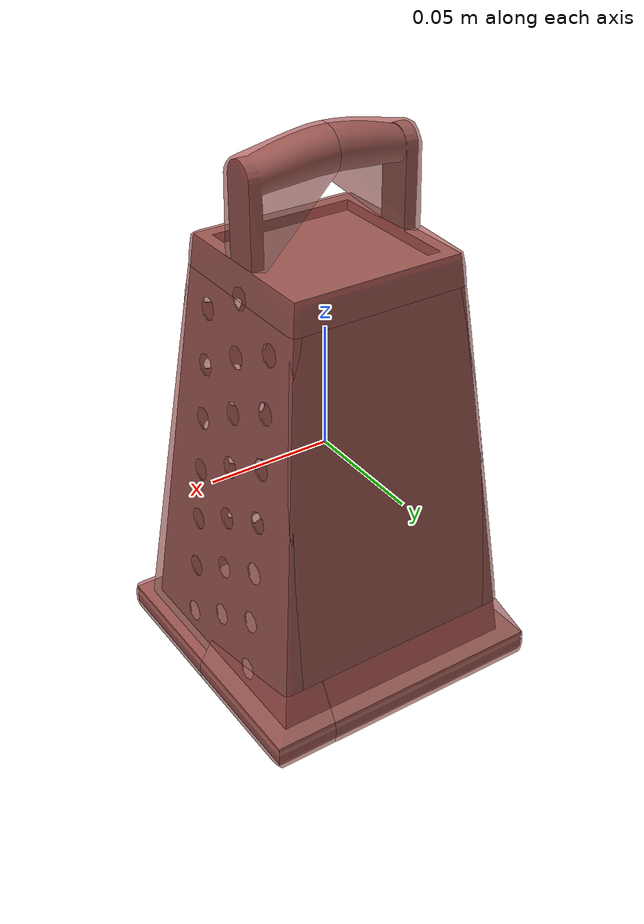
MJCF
<mujoco model="model">
  <option timestep="0.002" gravity="0.0 0.0 -9.81"/>
  <compiler angle="radian"/>
  <asset>
    <mesh file="visual/CheeseGrater005.obj" name="CheeseGrater005_vis"/>
    <mesh file="visual/Clear.obj" name="CheeseGrater005_Clear_vis"/>
    <texture file="visual/T_BC001.png" name="CheeseGrater005_material" type="2d"/>
    <material name="CheeseGrater005_material" rgba="1 1 1 1.0" texture="CheeseGrater005_material" shininess="0.5" specular="3"/>
    <texture file="visual/T_BC001.png" name="CheeseGrater005_Clear_material" type="2d"/>
    <material name="CheeseGrater005_Clear_material" rgba="1 1 1 0.699999988079071" texture="CheeseGrater005_Clear_material" shininess="0.5" specular="0.3103448502657381"/>
    <mesh file="collision/collision_mesh_collision_0.obj" name="CheeseGrater005_collision_mesh_0"/>
    <mesh file="collision/collision_mesh_collision_1.obj" name="CheeseGrater005_collision_mesh_1"/>
    <mesh file="collision/collision_mesh_collision_2.obj" name="CheeseGrater005_collision_mesh_2"/>
    <mesh file="collision/collision_mesh_collision_3.obj" name="CheeseGrater005_collision_mesh_3"/>
    <mesh file="collision/collision_mesh_collision_4.obj" name="CheeseGrater005_collision_mesh_4"/>
    <mesh file="collision/collision_mesh_collision_5.obj" name="CheeseGrater005_collision_mesh_5"/>
    <mesh file="collision/collision_mesh_collision_6.obj" name="CheeseGrater005_collision_mesh_6"/>
    <mesh file="collision/collision_mesh_collision_7.obj" name="CheeseGrater005_collision_mesh_7"/>
    <mesh file="collision/collision_mesh_collision_8.obj" name="CheeseGrater005_collision_mesh_8"/>
    <mesh file="collision/collision_mesh_collision_9.obj" name="CheeseGrater005_collision_mesh_9"/>
    <mesh file="collision/collision_mesh_collision_10.obj" name="CheeseGrater005_collision_mesh_10"/>
    <mesh file="collision/collision_mesh_collision_11.obj" name="CheeseGrater005_collision_mesh_11"/>
    <mesh file="collision/collision_mesh_collision_12.obj" name="CheeseGrater005_collision_mesh_12"/>
    <mesh file="collision/collision_mesh_collision_13.obj" name="CheeseGrater005_collision_mesh_13"/>
    <mesh file="collision/collision_mesh_collision_14.obj" name="CheeseGrater005_collision_mesh_14"/>
    <mesh file="collision/collision_mesh_collision_15.obj" name="CheeseGrater005_collision_mesh_15"/>
  </asset>
  <default>
    <default class="visual">
      <geom conaffinity="0" contype="0" group="1" type="mesh"/>
    </default>
    <default class="collision">
      <geom group="0" rgba="0.5 0 0 0.5" density="1.0" solref="0.004 1" solimp="0.998 0.998 0.001"/>
    </default>
    <default class="spawn">
      <geom group="0" rgba="1 1 1 0.5" contype="0" conaffinity="0"/>
      <site group="0" rgba="1 1 1 0.5"/>
    </default>
    <default class="region">
      <geom group="1" conaffinity="0" contype="0" rgba="0 1 0 0" mass="0"/>
    </default>
  </default>
  <worldbody>
    <body>
      <body name="object">
        <geom mesh="CheeseGrater005_vis" type="mesh" solimp="0.998 0.998 0.001" solref="0.001 1" friction="0.95 0.3 0.1" class="visual" material="CheeseGrater005_material"/>
        <body name="CheeseGrater005_Clear">
          <geom mesh="CheeseGrater005_Clear_vis" type="mesh" solimp="0.998 0.998 0.001" solref="0.001 1" friction="0.95 0.3 0.1" class="visual" material="CheeseGrater005_Clear_material"/>
        </body>
        <geom class="region" name="reg_bbox" type="box" pos="0.0 0.0 -9.388000000000452e-05" size="0.06049623 0.05889823 0.12758935999999999"/>
        <geom mesh="CheeseGrater005_collision_mesh_0" type="mesh" class="collision"/>
        <geom mesh="CheeseGrater005_collision_mesh_1" type="mesh" class="collision"/>
        <geom mesh="CheeseGrater005_collision_mesh_2" type="mesh" class="collision"/>
        <geom mesh="CheeseGrater005_collision_mesh_3" type="mesh" class="collision"/>
        <geom mesh="CheeseGrater005_collision_mesh_4" type="mesh" class="collision"/>
        <geom mesh="CheeseGrater005_collision_mesh_5" type="mesh" class="collision"/>
        <geom mesh="CheeseGrater005_collision_mesh_6" type="mesh" class="collision"/>
        <geom mesh="CheeseGrater005_collision_mesh_7" type="mesh" class="collision"/>
        <geom mesh="CheeseGrater005_collision_mesh_8" type="mesh" class="collision"/>
        <geom mesh="CheeseGrater005_collision_mesh_9" type="mesh" class="collision"/>
        <geom mesh="CheeseGrater005_collision_mesh_10" type="mesh" class="collision"/>
        <geom mesh="CheeseGrater005_collision_mesh_11" type="mesh" class="collision"/>
        <geom mesh="CheeseGrater005_collision_mesh_12" type="mesh" class="collision"/>
        <geom mesh="CheeseGrater005_collision_mesh_13" type="mesh" class="collision"/>
        <geom mesh="CheeseGrater005_collision_mesh_14" type="mesh" class="collision"/>
        <geom mesh="CheeseGrater005_collision_mesh_15" type="mesh" class="collision"/>
      </body>
    </body>
  </worldbody>
  <actuator/>
</mujoco>
